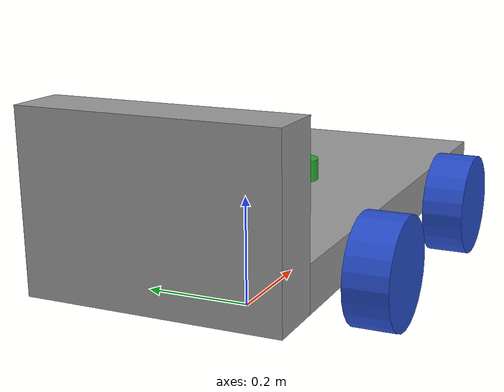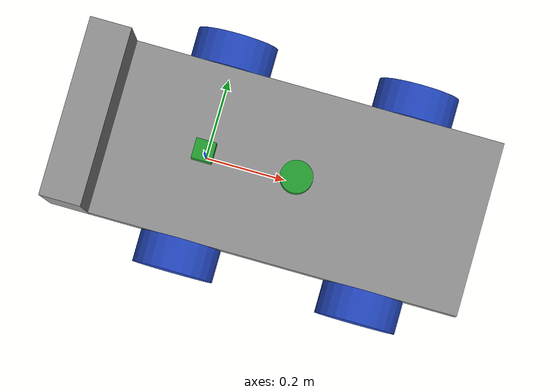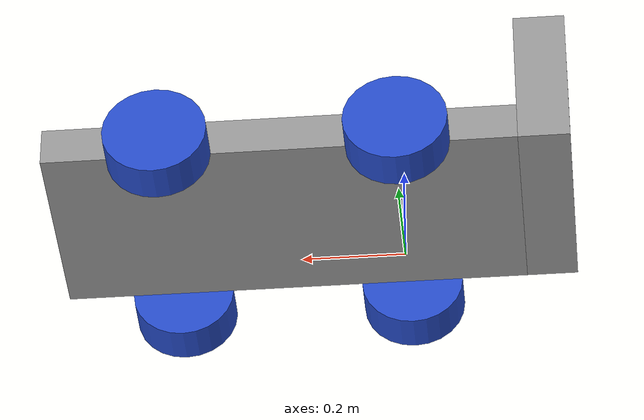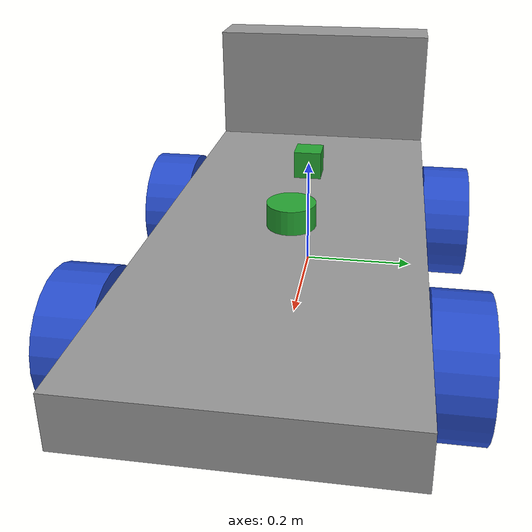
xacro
<?xml version="1.0"?>
<robot name="test_bot"
	xmlns:xacro="http://www.ros.org/wiki/xacro">
	<xacro:include filename="common_properties.xacro" />
	<xacro:property name="base_length"
		value="0.915" />
	<xacro:property name="base_width"
		value="0.43" />
	<xacro:property name="base_height"
		value="0.08" />
	<xacro:property name="wheel_radius"
		value="0.1" />
	<xacro:property name="wheel_length"
		value="0.08" />
	<xacro:property name="Ebox_length"
		value="0.1" />
	<xacro:property name="Ebox_width"
		value="0.43" />
	<xacro:property name="Ebox_height"
		value="0.3" />
	<xacro:property name="lidar_radius"
		value="0.04" />
	<xacro:property name="lidar_height"
		value="0.04" />
	<link name="base_footprint" />
	<link name="base_link">
		<visual>
			<geometry>
				<box size="${base_length} ${base_width} ${base_height}" />
			</geometry>
			<origin xyz="0 0 ${base_height / 2}"
				rpy="0 0 0" />
			<material name="grey" />
		</visual>
		<collision>
			<geometry>
				<box size="${base_length} ${base_width} ${base_height}" />
			</geometry>
			<origin xyz="0 0 ${base_height / 2}"
				rpy="0 0 0" />
		</collision>
		<xacro:box_inertia m="7.0"
			l="${base_length}"
			w="${base_width}"
			h="${base_height}"
			xyz="0 0 ${base_height / 2}"
			rpy="0 0 0" />
	</link>
	<xacro:macro name="wheel_link"
		params="prefix">
		<link name="${prefix}_wheel_link">
			<visual>
				<geometry>
					<cylinder radius="${wheel_radius}"
						length="${wheel_length}" />
				</geometry>
				<origin xyz="0 0 0"
					rpy="${pi / 2.0} 0 0" />
				<material name="blue" />
			</visual>
			<collision>
				<geometry>
					<cylinder radius="${wheel_radius}"
						length="${wheel_length}" />
				</geometry>
				<origin xyz="0 0 0"
					rpy="${pi / 2.0} 0 0" />
			</collision>
			<xacro:cylinder_inertia m="1.5"
				r="${wheel_radius}"
				h="${wheel_length}"
				xyz="0 0 0"
				rpy="${pi / 2.0} 0 0" />
		</link>
	</xacro:macro>
	<xacro:wheel_link prefix="front_right" />
	<xacro:wheel_link prefix="front_left" />
	<xacro:wheel_link prefix="rear_right" />
	<xacro:wheel_link prefix="rear_left" />
	<link name="Ebox_link">
		<visual>
			<geometry>
				<box size="${Ebox_length} ${Ebox_width} ${Ebox_height}" />
			</geometry>
			<origin xyz="0 0 0"
				rpy="0 0 0" />
			<material name="grey" />
		</visual>
		<collision>
			<geometry>
				<box size="${Ebox_length} ${Ebox_width} ${Ebox_height}" />
			</geometry>
			<origin xyz="0 0 0"
				rpy="0 0 0" />
		</collision>
		<xacro:box_inertia m="2.0"
			l="${Ebox_length}"
			w="${Ebox_width}"
			h="${Ebox_height}"
			xyz="0 0 0"
			rpy="0 0 0" />
	</link>
	<link name="lidar_link">
		<visual>
			<geometry>
				<cylinder radius="${lidar_radius}"
					length="${lidar_height}" />
			</geometry>
			<origin xyz="0 0 0"
				rpy="0 0 3.14" />
			<material name="green" />
		</visual>
		<collision>
			<geometry>
				<cylinder radius="${lidar_radius}"
					length="${lidar_height}" />
			</geometry>
		</collision>
		<xacro:cylinder_inertia m="0.1"
			r="${lidar_radius}"
			h="${lidar_height}"
			xyz="0 0 0"
			rpy="0 0 0" />
	</link>
	<link name="camera_link">
		<visual>
			<geometry>
				<box size="0.05 0.05 0.05" />
			</geometry>
			<origin xyz="0 0 0"
				rpy="0 0 0" />
			<material name="green" />
		</visual>
		<collision>
			<geometry>
				<box size="0.05 0.05 0.05" />
			</geometry>
		</collision>
		<xacro:box_inertia m="0.1"
			l="0.05"
			w="0.05"
			h="0.05"
			xyz="0 0 0"
			rpy="0 0 0" />
	</link>
	<link name="camera_fisheye1_optical_frame" />
	<link name="camera_fisheye2_optical_frame" />
	<link name="camera_pose_optical_frame" />
	<joint name="base_joint"
		type="fixed">
		<parent link="base_footprint" />
		<child link="base_link" />
		<origin xyz="${base_length / 4.0} 0 ${wheel_radius}"
			rpy="0 0 0" />
	</joint>
	<joint name="base_rear_right_wheel_joint"
		type="continuous">
		<parent link="base_link" />
		<child link="rear_right_wheel_link" />
		<origin xyz="${-base_length / 4.0} ${-(base_width + wheel_length) / 2.0} 0"
			rpy="0 0 0" />
		<axis xyz="0 1 0" />
	</joint>
	<joint name="base_rear_left_wheel_joint"
		type="continuous">
		<parent link="base_link" />
		<child link="rear_left_wheel_link" />
		<origin xyz="${-base_length / 4.0} ${(base_width + wheel_length) / 2.0} 0"
			rpy="0 0 0" />
		<axis xyz="0 1 0" />
	</joint>
	<joint name="base_front_right_wheel_joint"
		type="fixed">
		<parent link="base_link" />
		<child link="front_right_wheel_link" />
		<origin xyz="${base_length / 4.0} ${-(base_width + wheel_length) / 2.0} 0"
			rpy="0 0 0" />
	</joint>
	<joint name="base_front_left_wheel_joint"
		type="fixed">
		<parent link="base_link" />
		<child link="front_left_wheel_link" />
		<origin xyz="${base_length / 4.0} ${(base_width + wheel_length) / 2.0} 0"
			rpy="0 0 0" />
	</joint>
	<joint name="base_Ebox_joint"
		type="fixed">
		<parent link="base_link" />
		<child link="Ebox_link" />
		<origin xyz="${(-base_length / 2.0) - (Ebox_length / 2.0)} 0 ${Ebox_height / 2.0}"
			rpy="0 0 0" />
	</joint>

	<!--changed to 0, moved physical lidar to middle of robot-->
	<joint name="base_lidar_joint"
		type="fixed">
		<parent link="base_link" />
		<child link="lidar_link" />
		<origin xyz="0 0 ${base_height + (lidar_height/2.0)}" rpy="0 0 3.14" />
	</joint>
	<joint name="base_camera_joint"
		type="fixed">
		<parent link="base_link" />
		<child link="camera_link" />
		<origin xyz="${-base_length / 4.0} 0 ${base_height + 0.025}"
			rpy="0 0 0" />
	</joint>
	<joint name="base_camera_fisheye1_joint"
		type="fixed">
		<parent link="base_link" />
		<child link="camera_fisheye1_optical_frame" />
		<origin xyz="${-base_length / 4.0} 0 ${base_height + 0.025}"
			rpy="0 0 0" />
	</joint>
	<joint name="base_camera_fisheye2_joint"
		type="fixed">
		<parent link="base_link" />
		<child link="camera_fisheye2_optical_frame" />
		<origin xyz="${-base_length / 4.0} 0 ${base_height + 0.025}"
			rpy="0 0 0" />
	</joint>
	<joint name="base_camera_pose_frame"
		type="fixed">
		<parent link="base_link" />
		<child link="camera_pose_optical_frame" />
		<origin xyz="${-base_length / 4.0} 0 ${base_height + 0.025}"
			rpy="0 0 0" />
	</joint>
</robot>
